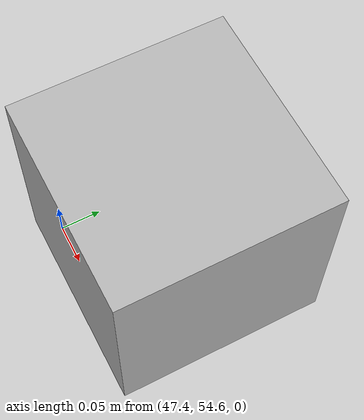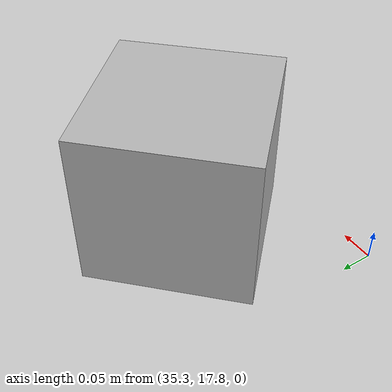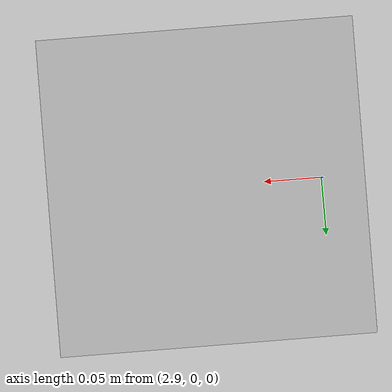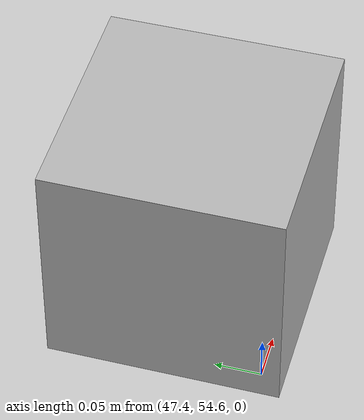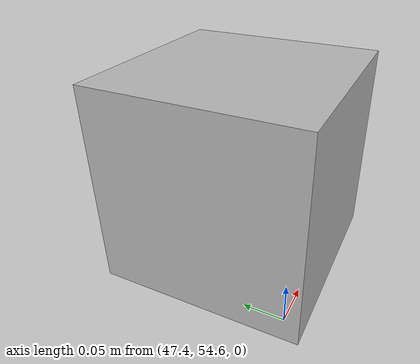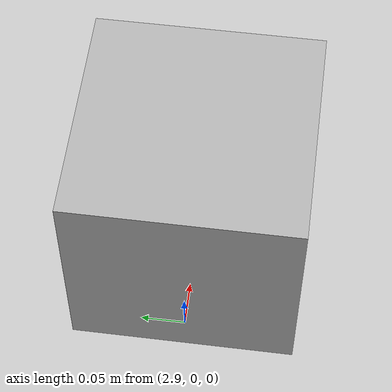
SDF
<?xml version="1.0" ?>
<sdf version="1.6">

  <world name="default">

    <include>
      <uri>model://ground_plane</uri>
    </include>

      <include>
         <uri>model://sun</uri>
      </include>

      <model name='box_2'>
	<link name='base_2'>
	  <pose frame=''>0 0 0 0 0 0</pose>
	  <inertial>
	    <pose frame=''>3 0 0.125 0 0 0</pose>
	    <mass>1</mass>
	    <inertia>
	      <ixx>1</ixx>
	      <ixy>0</ixy>
	      <ixz>0</ixz>
	      <iyy>1</iyy>
	      <iyz>0</iyz>
	      <izz>1</izz>
	    </inertia>
	  </inertial>
	  <collision name='base_2_collision'>
	    <pose frame=''>3 0 0.125 0 0 0</pose>
	    <geometry>
	      <box>
		<size>0.25 0.25 0.25</size>
	      </box>
	    </geometry>
	  </collision>
	  <visual name='base_2_visual'>
	    <pose frame=''>3 0 0.125 0 0 0</pose>
	    <geometry>
	      <box>
		<size>0.25 0.25 0.25</size>
	      </box>
	    </geometry>
</visual>
	</link>
	 </model>

	      <model name='box_5'>
	<link name='base_5'>
	  <pose frame=''>0 0 0 0 0 0</pose>
	  <inertial>
	    <pose frame=''>35.5 18.0 0.125 0 0 0.7853</pose>
	    <mass>1</mass>
	    <inertia>
	      <ixx>1</ixx>
	      <ixy>0</ixy>
	      <ixz>0</ixz>
	      <iyy>1</iyy>
	      <iyz>0</iyz>
	      <izz>1</izz>
	    </inertia>
	  </inertial>
	  <collision name='base_5_collision'>
	    <pose frame=''>35.5 18.0 0.125 0 0 0.7853</pose>
	    <geometry>
	      <box>
		<size>0.25 0.25 0.25</size>
	      </box>
	    </geometry>
	  </collision>
	  <visual name='base_5_visual'>
	    <pose frame=''>35.5 18.0 0.125 0 0 0.7853</pose>
	    <geometry>
	      <box>
		<size>0.25 0.25 0.25</size>
	      </box>
	    </geometry>
	  </visual>
	</link>
	 </model>

	<model name='box_8'>
	<link name='base_8'>
	  <pose frame=''>0 0 0 0 0 0</pose>
	  <inertial>
	    <pose frame=''>47.5 54.7 0.125 0 0 0</pose>
	    <mass>1</mass>
	    <inertia>
	      <ixx>1</ixx>
	      <ixy>0</ixy>
	      <ixz>0</ixz>
	      <iyy>1</iyy>
	      <iyz>0</iyz>
	      <izz>1</izz>
	    </inertia>
	  </inertial>
	  <collision name='base_8_collision'>
	    <pose frame=''>47.5 54.7 0.125 0 0 0</pose>
	    <geometry>
	      <box>
		<size>0.25 0.25 0.25</size>
	      </box>
	    </geometry>
	  </collision>
	  <visual name='base_8_visual'>
	    <pose frame=''>47.5 54.7 0.125 0 0 0</pose>
	    <geometry>
	      <box>
		<size>0.25 0.25 0.25</size>
	      </box>
	    </geometry>
	  </visual>
	</link>
	</model>

   </world>
</sdf>
